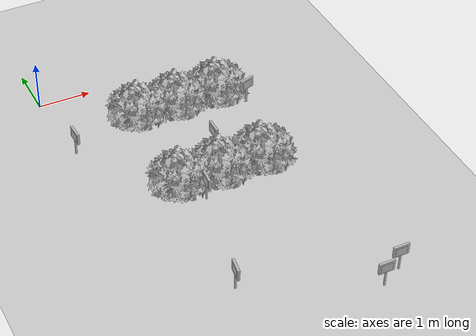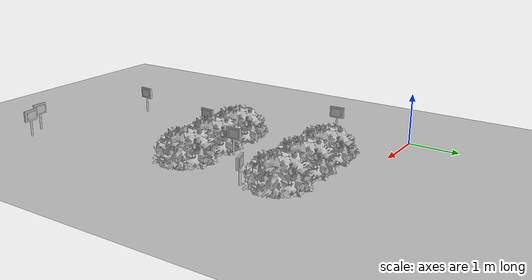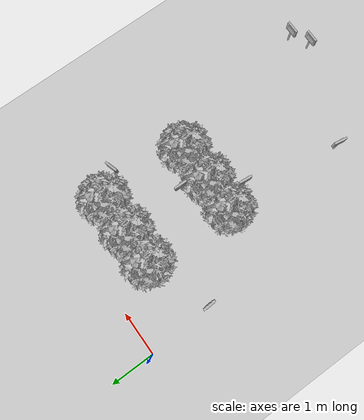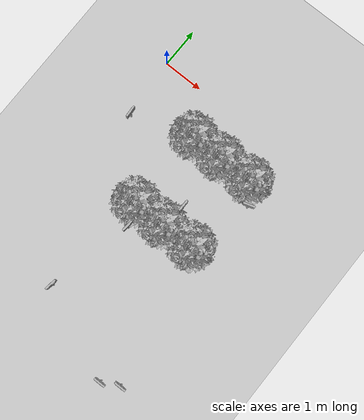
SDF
<sdf version="1.7">
 <world name="default">
  <model name="ground_plane">
   <static>1</static>
   <link name="link">
    <collision name="collision">
     <geometry><plane><normal>0 0 1</normal><size>100 100</size></plane></geometry>
     <surface>
      <contact><collide_bitmask>65535</collide_bitmask></contact>
      <friction><ode><mu>100</mu><mu2>50</mu2></ode></friction>
     </surface>
    </collision>
    <visual name="visual">
     <cast_shadows>0</cast_shadows>
     <geometry><plane><normal>0 0 1</normal><size>100 100</size></plane></geometry>
     <material>
      <script><uri>file://media/materials/scripts/gazebo.material</uri><name>Gazebo/Grey</name></script>
     </material>
    </visual>
   </link>
  </model>
  <model name="abbfre_2">
   <link name="link_0">
    <inertial>
     <mass>1</mass>
     <inertia>
      <ixx>0.166667</ixx>
      <ixy>0</ixy>
      <ixz>0</ixz>
      <iyy>0.166667</iyy>
      <iyz>0</iyz>
      <izz>0.166667</izz>
     </inertia>
    </inertial>
    <pose>0 0 -0 1.60917 -0 0</pose>
    <visual name="visual">
     <geometry><mesh><uri>model://abbfre/meshes/arbufres.obj</uri><scale>1 1 1</scale></mesh></geometry>
    </visual>
    <collision name="collision">
     <geometry><mesh><uri>model://abbfre/meshes/arbufres.obj</uri><scale>1 1 1</scale></mesh></geometry>
     <surface>
      <friction>
       <ode><mu>1</mu><mu2>1</mu2><fdir1>0 0 0</fdir1><slip1>0</slip1><slip2>0</slip2></ode>
       <torsional>
        <coefficient>1</coefficient>
        <patch_radius>0</patch_radius>
        <surface_radius>0</surface_radius>
        <use_patch_radius>1</use_patch_radius>
        <ode><slip>0</slip></ode>
       </torsional>
      </friction>
      <bounce><restitution_coefficient>0</restitution_coefficient><threshold>1e+06</threshold></bounce>
      <contact>
       <collide_without_contact>0</collide_without_contact>
       <collide_without_contact_bitmask>1</collide_without_contact_bitmask>
       <collide_bitmask>1</collide_bitmask>
       <ode>
        <soft_cfm>0</soft_cfm>
        <soft_erp>0.2</soft_erp>
        <kp>1e+13</kp>
        <kd>1</kd>
        <max_vel>0.01</max_vel>
        <min_depth>0</min_depth>
       </ode>
       <bullet>
        <split_impulse>1</split_impulse>
        <split_impulse_penetration_threshold>-0.01</split_impulse_penetration_threshold>
        <soft_cfm>0</soft_cfm>
        <soft_erp>0.2</soft_erp>
        <kp>1e+13</kp>
        <kd>1</kd>
       </bullet>
      </contact>
     </surface>
    </collision>
   </link>
   <static>1</static>
   <pose>2.4303 -0.881882 0 0 -0 0</pose>
  </model>
  <model name="abbfre_8">
   <link name="link_0">
    <inertial>
     <mass>1</mass>
     <inertia>
      <ixx>0.166667</ixx>
      <ixy>0</ixy>
      <ixz>0</ixz>
      <iyy>0.166667</iyy>
      <iyz>0</iyz>
      <izz>0.166667</izz>
     </inertia>
    </inertial>
    <pose>0 0 -0 1.60917 -0 0</pose>
    <visual name="visual">
     <geometry><mesh><uri>model://abbfre/meshes/arbufres.obj</uri><scale>1 1 1</scale></mesh></geometry>
    </visual>
    <collision name="collision">
     <geometry><mesh><uri>model://abbfre/meshes/arbufres.obj</uri><scale>1 1 1</scale></mesh></geometry>
     <surface>
      <friction>
       <ode><mu>1</mu><mu2>1</mu2><fdir1>0 0 0</fdir1><slip1>0</slip1><slip2>0</slip2></ode>
       <torsional>
        <coefficient>1</coefficient>
        <patch_radius>0</patch_radius>
        <surface_radius>0</surface_radius>
        <use_patch_radius>1</use_patch_radius>
        <ode><slip>0</slip></ode>
       </torsional>
      </friction>
      <bounce><restitution_coefficient>0</restitution_coefficient><threshold>1e+06</threshold></bounce>
      <contact>
       <collide_without_contact>0</collide_without_contact>
       <collide_without_contact_bitmask>1</collide_without_contact_bitmask>
       <collide_bitmask>1</collide_bitmask>
       <ode>
        <soft_cfm>0</soft_cfm>
        <soft_erp>0.2</soft_erp>
        <kp>1e+13</kp>
        <kd>1</kd>
        <max_vel>0.01</max_vel>
        <min_depth>0</min_depth>
       </ode>
       <bullet>
        <split_impulse>1</split_impulse>
        <split_impulse_penetration_threshold>-0.01</split_impulse_penetration_threshold>
        <soft_cfm>0</soft_cfm>
        <soft_erp>0.2</soft_erp>
        <kp>1e+13</kp>
        <kd>1</kd>
       </bullet>
      </contact>
     </surface>
    </collision>
   </link>
   <static>1</static>
   <pose>2.34792 -2.93612 0 0 -0 0</pose>
  </model>
  <model name="letrero_riego_II_1">
   <link name="link_0">
    <inertial>
     <mass>0.0543151</mass>
     <inertia>
      <ixx>4.90351e-06</ixx>
      <ixy>0</ixy>
      <ixz>0</ixz>
      <iyy>4.90351e-06</iyy>
      <iyz>0</iyz>
      <izz>1.12837e-07</izz>
     </inertia>
    </inertial>
    <pose>0.002515 0.005109 0.153562 0 -0 0</pose>
    <visual name="visual">
     <geometry><cylinder><radius>0.0203836</radius><length>0.327243</length></cylinder></geometry>
     <material>
      <lighting>1</lighting>
      <script>
       <uri>model://letrero_riego_II/madera/scripts</uri>
       <uri>model://letrero_riego_II/madera/textures</uri>
       <name>textur/madera</name>
      </script>
      <shader type="pixel"/>
      <emissive>0 0 0 1</emissive>
     </material>
    </visual>
    <collision name="collision">
     <geometry><cylinder><radius>0.020384</radius><length>0.327243</length></cylinder></geometry>
     <surface>
      <friction>
       <ode><mu>1</mu><mu2>1</mu2><fdir1>0 0 0</fdir1><slip1>0</slip1><slip2>0</slip2></ode>
       <torsional>
        <coefficient>1</coefficient>
        <patch_radius>0</patch_radius>
        <surface_radius>0</surface_radius>
        <use_patch_radius>1</use_patch_radius>
        <ode><slip>0</slip></ode>
       </torsional>
      </friction>
      <bounce><restitution_coefficient>0</restitution_coefficient><threshold>1e+06</threshold></bounce>
      <contact>
       <collide_without_contact>0</collide_without_contact>
       <collide_without_contact_bitmask>1</collide_without_contact_bitmask>
       <collide_bitmask>1</collide_bitmask>
       <ode>
        <soft_cfm>0</soft_cfm>
        <soft_erp>0.2</soft_erp>
        <kp>1e+13</kp>
        <kd>1</kd>
        <max_vel>0.01</max_vel>
        <min_depth>0</min_depth>
       </ode>
       <bullet>
        <split_impulse>1</split_impulse>
        <split_impulse_penetration_threshold>-0.01</split_impulse_penetration_threshold>
        <soft_cfm>0</soft_cfm>
        <soft_erp>0.2</soft_erp>
        <kp>1e+13</kp>
        <kd>1</kd>
       </bullet>
      </contact>
     </surface>
    </collision>
   </link>
   <link name="link_1">
    <inertial>
     <mass>0.00299633</mass>
     <inertia>
      <ixx>1.27855e-05</ixx>
      <ixy>0</ixy>
      <ixz>0</ixz>
      <iyy>3.42923e-05</iyy>
      <iyz>0</iyz>
      <izz>2.25402e-05</izz>
     </inertia>
    </inertial>
    <pose>-0.001542 0.002452 0.422031 0 -0 0</pose>
    <visual name="visual">
     <geometry><box><size>0.296988 0.04549 0.221665</size></box></geometry>
     <material>
      <lighting>1</lighting>
      <script>
       <uri>model://letrero_riego_II/madera/scripts</uri>
       <uri>model://letrero_riego_II/madera/textures</uri>
       <name>textur/madera</name>
      </script>
      <shader type="pixel"/>
      <emissive>0 0 0 1</emissive>
     </material>
    </visual>
    <collision name="collision">
     <geometry><box><size>0.296988 0.04549 0.221665</size></box></geometry>
     <surface>
      <friction>
       <ode><mu>1</mu><mu2>1</mu2><fdir1>0 0 0</fdir1><slip1>0</slip1><slip2>0</slip2></ode>
       <torsional>
        <coefficient>1</coefficient>
        <patch_radius>0</patch_radius>
        <surface_radius>0</surface_radius>
        <use_patch_radius>1</use_patch_radius>
        <ode><slip>0</slip></ode>
       </torsional>
      </friction>
      <bounce><restitution_coefficient>0</restitution_coefficient><threshold>1e+06</threshold></bounce>
      <contact>
       <collide_without_contact>0</collide_without_contact>
       <collide_without_contact_bitmask>1</collide_without_contact_bitmask>
       <collide_bitmask>1</collide_bitmask>
       <ode>
        <soft_cfm>0</soft_cfm>
        <soft_erp>0.2</soft_erp>
        <kp>1e+13</kp>
        <kd>1</kd>
        <max_vel>0.01</max_vel>
        <min_depth>0</min_depth>
       </ode>
       <bullet>
        <split_impulse>1</split_impulse>
        <split_impulse_penetration_threshold>-0.01</split_impulse_penetration_threshold>
        <soft_cfm>0</soft_cfm>
        <soft_erp>0.2</soft_erp>
        <kp>1e+13</kp>
        <kd>1</kd>
       </bullet>
      </contact>
     </surface>
    </collision>
   </link>
   <link name="link_2">
    <inertial>
     <mass>0.00173577</mass>
     <inertia>
      <ixx>4.23206e-06</ixx>
      <ixy>0</ixy>
      <ixz>0</ixz>
      <iyy>1.03921e-05</iyy>
      <iyz>0</iyz>
      <izz>7.37287e-06</izz>
     </inertia>
    </inertial>
    <pose>-0.010225 0.002657 0.421501 0 -0 0</pose>
    <visual name="visual">
     <geometry><box><size>0.216284 0.064749 0.15832</size></box></geometry>
     <material>
      <lighting>1</lighting>
      <script>
       <uri>model://letrero_riego_II/materials/scripts</uri>
       <uri>model://letrero_riego_II/materials/textures</uri>
       <name>textur/sisrie</name>
      </script>
      <shader type="pixel"/>
      <emissive>0 0 0 1</emissive>
     </material>
    </visual>
    <collision name="collision">
     <geometry><box><size>0.216284 0.064749 0.15832</size></box></geometry>
     <surface>
      <friction>
       <ode><mu>1</mu><mu2>1</mu2><fdir1>0 0 0</fdir1><slip1>0</slip1><slip2>0</slip2></ode>
       <torsional>
        <coefficient>1</coefficient>
        <patch_radius>0</patch_radius>
        <surface_radius>0</surface_radius>
        <use_patch_radius>1</use_patch_radius>
        <ode><slip>0</slip></ode>
       </torsional>
      </friction>
      <bounce><restitution_coefficient>0</restitution_coefficient><threshold>1e+06</threshold></bounce>
      <contact>
       <collide_without_contact>0</collide_without_contact>
       <collide_without_contact_bitmask>1</collide_without_contact_bitmask>
       <collide_bitmask>1</collide_bitmask>
       <ode>
        <soft_cfm>0</soft_cfm>
        <soft_erp>0.2</soft_erp>
        <kp>1e+13</kp>
        <kd>1</kd>
        <max_vel>0.01</max_vel>
        <min_depth>0</min_depth>
       </ode>
       <bullet>
        <split_impulse>1</split_impulse>
        <split_impulse_penetration_threshold>-0.01</split_impulse_penetration_threshold>
        <soft_cfm>0</soft_cfm>
        <soft_erp>0.2</soft_erp>
        <kp>1e+13</kp>
        <kd>1</kd>
       </bullet>
      </contact>
     </surface>
    </collision>
   </link>
   <joint name="link_0_JOINT_1" type="fixed">
    <parent>link_0</parent>
    <child>link_1</child>
    <physics>
     <ode><limit><cfm>0</cfm><erp>0.2</erp></limit><suspension><cfm>0</cfm><erp>0.2</erp></suspension></ode>
    </physics>
   </joint>
   <joint name="link_0_JOINT_2" type="fixed">
    <parent>link_0</parent>
    <child>link_2</child>
    <physics>
     <ode><limit><cfm>0</cfm><erp>0.2</erp></limit><suspension><cfm>0</cfm><erp>0.2</erp></suspension></ode>
    </physics>
   </joint>
   <static>1</static>
   <pose>3.62165 -1.52882 0 0 -0 0.298918</pose>
  </model>
  <model name="letrero_fresas_II_0">
   <link name="link_0">
    <inertial>
     <mass>0.0543151</mass>
     <inertia>
      <ixx>4.90351e-06</ixx>
      <ixy>0</ixy>
      <ixz>0</ixz>
      <iyy>4.90351e-06</iyy>
      <iyz>0</iyz>
      <izz>1.12837e-07</izz>
     </inertia>
    </inertial>
    <pose>0.002515 0.005109 0.153562 0 -0 0</pose>
    <visual name="visual">
     <geometry><cylinder><radius>0.0203836</radius><length>0.327243</length></cylinder></geometry>
     <material>
      <lighting>1</lighting>
      <script>
       <uri>model://letrero_fresas_II/madera/scripts</uri>
       <uri>model://letrero_fresas_II/madera/textures</uri>
       <name>textur/madera</name>
      </script>
      <shader type="pixel"/>
      <emissive>0 0 0 1</emissive>
     </material>
    </visual>
    <collision name="collision">
     <geometry><cylinder><radius>0.020384</radius><length>0.327243</length></cylinder></geometry>
     <surface>
      <friction>
       <ode><mu>1</mu><mu2>1</mu2><fdir1>0 0 0</fdir1><slip1>0</slip1><slip2>0</slip2></ode>
       <torsional>
        <coefficient>1</coefficient>
        <patch_radius>0</patch_radius>
        <surface_radius>0</surface_radius>
        <use_patch_radius>1</use_patch_radius>
        <ode><slip>0</slip></ode>
       </torsional>
      </friction>
      <bounce><restitution_coefficient>0</restitution_coefficient><threshold>1e+06</threshold></bounce>
      <contact>
       <collide_without_contact>0</collide_without_contact>
       <collide_without_contact_bitmask>1</collide_without_contact_bitmask>
       <collide_bitmask>1</collide_bitmask>
       <ode>
        <soft_cfm>0</soft_cfm>
        <soft_erp>0.2</soft_erp>
        <kp>1e+13</kp>
        <kd>1</kd>
        <max_vel>0.01</max_vel>
        <min_depth>0</min_depth>
       </ode>
       <bullet>
        <split_impulse>1</split_impulse>
        <split_impulse_penetration_threshold>-0.01</split_impulse_penetration_threshold>
        <soft_cfm>0</soft_cfm>
        <soft_erp>0.2</soft_erp>
        <kp>1e+13</kp>
        <kd>1</kd>
       </bullet>
      </contact>
     </surface>
    </collision>
   </link>
   <link name="link_1">
    <inertial>
     <mass>0.00299633</mass>
     <inertia>
      <ixx>1.27855e-05</ixx>
      <ixy>0</ixy>
      <ixz>0</ixz>
      <iyy>3.42923e-05</iyy>
      <iyz>0</iyz>
      <izz>2.25402e-05</izz>
     </inertia>
    </inertial>
    <pose>-0.001542 0.002452 0.422031 0 -0 0</pose>
    <visual name="visual">
     <geometry><box><size>0.296988 0.04549 0.221665</size></box></geometry>
     <material>
      <lighting>1</lighting>
      <script>
       <uri>model://letrero_fresas_II/madera/scripts</uri>
       <uri>model://letrero_fresas_II/madera/textures</uri>
       <name>textur/madera</name>
      </script>
      <shader type="pixel"/>
      <emissive>0 0 0 1</emissive>
     </material>
    </visual>
    <collision name="collision">
     <geometry><box><size>0.296988 0.04549 0.221665</size></box></geometry>
     <surface>
      <friction>
       <ode><mu>1</mu><mu2>1</mu2><fdir1>0 0 0</fdir1><slip1>0</slip1><slip2>0</slip2></ode>
       <torsional>
        <coefficient>1</coefficient>
        <patch_radius>0</patch_radius>
        <surface_radius>0</surface_radius>
        <use_patch_radius>1</use_patch_radius>
        <ode><slip>0</slip></ode>
       </torsional>
      </friction>
      <bounce><restitution_coefficient>0</restitution_coefficient><threshold>1e+06</threshold></bounce>
      <contact>
       <collide_without_contact>0</collide_without_contact>
       <collide_without_contact_bitmask>1</collide_without_contact_bitmask>
       <collide_bitmask>1</collide_bitmask>
       <ode>
        <soft_cfm>0</soft_cfm>
        <soft_erp>0.2</soft_erp>
        <kp>1e+13</kp>
        <kd>1</kd>
        <max_vel>0.01</max_vel>
        <min_depth>0</min_depth>
       </ode>
       <bullet>
        <split_impulse>1</split_impulse>
        <split_impulse_penetration_threshold>-0.01</split_impulse_penetration_threshold>
        <soft_cfm>0</soft_cfm>
        <soft_erp>0.2</soft_erp>
        <kp>1e+13</kp>
        <kd>1</kd>
       </bullet>
      </contact>
     </surface>
    </collision>
   </link>
   <link name="link_2">
    <inertial>
     <mass>0.00173577</mass>
     <inertia>
      <ixx>4.23206e-06</ixx>
      <ixy>0</ixy>
      <ixz>0</ixz>
      <iyy>1.03921e-05</iyy>
      <iyz>0</iyz>
      <izz>7.37287e-06</izz>
     </inertia>
    </inertial>
    <pose>-0.010225 0.002657 0.421501 0 -0 0</pose>
    <visual name="visual">
     <geometry><box><size>0.216284 0.064749 0.15832</size></box></geometry>
     <material>
      <lighting>1</lighting>
      <script>
       <uri>model://letrero_fresas_II/materials/scripts</uri>
       <uri>model://letrero_fresas_II/materials/textures</uri>
       <name>textur/difres</name>
      </script>
      <shader type="pixel"/>
      <emissive>0 0 0 1</emissive>
     </material>
    </visual>
    <collision name="collision">
     <geometry><box><size>0.216284 0.064749 0.15832</size></box></geometry>
     <surface>
      <friction>
       <ode><mu>1</mu><mu2>1</mu2><fdir1>0 0 0</fdir1><slip1>0</slip1><slip2>0</slip2></ode>
       <torsional>
        <coefficient>1</coefficient>
        <patch_radius>0</patch_radius>
        <surface_radius>0</surface_radius>
        <use_patch_radius>1</use_patch_radius>
        <ode><slip>0</slip></ode>
       </torsional>
      </friction>
      <bounce><restitution_coefficient>0</restitution_coefficient><threshold>1e+06</threshold></bounce>
      <contact>
       <collide_without_contact>0</collide_without_contact>
       <collide_without_contact_bitmask>1</collide_without_contact_bitmask>
       <collide_bitmask>1</collide_bitmask>
       <ode>
        <soft_cfm>0</soft_cfm>
        <soft_erp>0.2</soft_erp>
        <kp>1e+13</kp>
        <kd>1</kd>
        <max_vel>0.01</max_vel>
        <min_depth>0</min_depth>
       </ode>
       <bullet>
        <split_impulse>1</split_impulse>
        <split_impulse_penetration_threshold>-0.01</split_impulse_penetration_threshold>
        <soft_cfm>0</soft_cfm>
        <soft_erp>0.2</soft_erp>
        <kp>1e+13</kp>
        <kd>1</kd>
       </bullet>
      </contact>
     </surface>
    </collision>
   </link>
   <joint name="link_0_JOINT_1" type="fixed">
    <parent>link_0</parent>
    <child>link_1</child>
    <physics>
     <ode><limit><cfm>0</cfm><erp>0.2</erp></limit><suspension><cfm>0</cfm><erp>0.2</erp></suspension></ode>
    </physics>
   </joint>
   <joint name="link_0_JOINT_2" type="fixed">
    <parent>link_0</parent>
    <child>link_2</child>
    <physics>
     <ode><limit><cfm>0</cfm><erp>0.2</erp></limit><suspension><cfm>0</cfm><erp>0.2</erp></suspension></ode>
    </physics>
   </joint>
   <static>1</static>
   <pose>2.45807 -2.47304 0 0 0 -1.58641</pose>
  </model>
  <model name="letrero_pajaro">
   <link name="link_0">
    <inertial>
     <mass>0.0543151</mass>
     <inertia>
      <ixx>4.90351e-06</ixx>
      <ixy>0</ixy>
      <ixz>0</ixz>
      <iyy>4.90351e-06</iyy>
      <iyz>0</iyz>
      <izz>1.12837e-07</izz>
     </inertia>
    </inertial>
    <pose>0.002515 0.005109 0.153562 0 -0 0</pose>
    <visual name="visual">
     <geometry><cylinder><radius>0.0203836</radius><length>0.327243</length></cylinder></geometry>
     <material>
      <lighting>1</lighting>
      <script>
       <uri>model://letrero_pajaro/madera/scripts</uri>
       <uri>model://letrero_pajaro/madera/textures</uri>
       <name>textur/madera</name>
      </script>
      <shader type="pixel"/>
      <emissive>0 0 0 1</emissive>
     </material>
    </visual>
    <collision name="collision">
     <geometry><cylinder><radius>0.020384</radius><length>0.327243</length></cylinder></geometry>
     <surface>
      <friction>
       <ode><mu>1</mu><mu2>1</mu2><fdir1>0 0 0</fdir1><slip1>0</slip1><slip2>0</slip2></ode>
       <torsional>
        <coefficient>1</coefficient>
        <patch_radius>0</patch_radius>
        <surface_radius>0</surface_radius>
        <use_patch_radius>1</use_patch_radius>
        <ode><slip>0</slip></ode>
       </torsional>
      </friction>
      <bounce><restitution_coefficient>0</restitution_coefficient><threshold>1e+06</threshold></bounce>
      <contact>
       <collide_without_contact>0</collide_without_contact>
       <collide_without_contact_bitmask>1</collide_without_contact_bitmask>
       <collide_bitmask>1</collide_bitmask>
       <ode>
        <soft_cfm>0</soft_cfm>
        <soft_erp>0.2</soft_erp>
        <kp>1e+13</kp>
        <kd>1</kd>
        <max_vel>0.01</max_vel>
        <min_depth>0</min_depth>
       </ode>
       <bullet>
        <split_impulse>1</split_impulse>
        <split_impulse_penetration_threshold>-0.01</split_impulse_penetration_threshold>
        <soft_cfm>0</soft_cfm>
        <soft_erp>0.2</soft_erp>
        <kp>1e+13</kp>
        <kd>1</kd>
       </bullet>
      </contact>
     </surface>
    </collision>
   </link>
   <link name="link_1">
    <inertial>
     <mass>0.00299633</mass>
     <inertia>
      <ixx>1.27855e-05</ixx>
      <ixy>0</ixy>
      <ixz>0</ixz>
      <iyy>3.42923e-05</iyy>
      <iyz>0</iyz>
      <izz>2.25402e-05</izz>
     </inertia>
    </inertial>
    <pose>-0.001542 0.002452 0.422031 0 -0 0</pose>
    <visual name="visual">
     <geometry><box><size>0.296988 0.04549 0.221665</size></box></geometry>
     <material>
      <lighting>1</lighting>
      <script>
       <uri>model://letrero_pajaro/madera/scripts</uri>
       <uri>model://letrero_pajaro/madera/textures</uri>
       <name>textur/madera</name>
      </script>
      <shader type="pixel"/>
      <emissive>0 0 0 1</emissive>
     </material>
    </visual>
    <collision name="collision">
     <geometry><box><size>0.296988 0.04549 0.221665</size></box></geometry>
     <surface>
      <friction>
       <ode><mu>1</mu><mu2>1</mu2><fdir1>0 0 0</fdir1><slip1>0</slip1><slip2>0</slip2></ode>
       <torsional>
        <coefficient>1</coefficient>
        <patch_radius>0</patch_radius>
        <surface_radius>0</surface_radius>
        <use_patch_radius>1</use_patch_radius>
        <ode><slip>0</slip></ode>
       </torsional>
      </friction>
      <bounce><restitution_coefficient>0</restitution_coefficient><threshold>1e+06</threshold></bounce>
      <contact>
       <collide_without_contact>0</collide_without_contact>
       <collide_without_contact_bitmask>1</collide_without_contact_bitmask>
       <collide_bitmask>1</collide_bitmask>
       <ode>
        <soft_cfm>0</soft_cfm>
        <soft_erp>0.2</soft_erp>
        <kp>1e+13</kp>
        <kd>1</kd>
        <max_vel>0.01</max_vel>
        <min_depth>0</min_depth>
       </ode>
       <bullet>
        <split_impulse>1</split_impulse>
        <split_impulse_penetration_threshold>-0.01</split_impulse_penetration_threshold>
        <soft_cfm>0</soft_cfm>
        <soft_erp>0.2</soft_erp>
        <kp>1e+13</kp>
        <kd>1</kd>
       </bullet>
      </contact>
     </surface>
    </collision>
   </link>
   <link name="link_2">
    <inertial>
     <mass>0.00173577</mass>
     <inertia>
      <ixx>4.23206e-06</ixx>
      <ixy>0</ixy>
      <ixz>0</ixz>
      <iyy>1.03921e-05</iyy>
      <iyz>0</iyz>
      <izz>7.37287e-06</izz>
     </inertia>
    </inertial>
    <pose>-0.010225 0.002657 0.421501 0 -0 0</pose>
    <visual name="visual">
     <geometry><box><size>0.216284 0.064749 0.15832</size></box></geometry>
     <material>
      <lighting>1</lighting>
      <script>
       <uri>model://letrero_pajaro/materials/scripts</uri>
       <uri>model://letrero_pajaro/materials/textures</uri>
       <name>textur/paj</name>
      </script>
      <shader type="pixel"/>
      <emissive>0 0 0 1</emissive>
     </material>
    </visual>
    <collision name="collision">
     <geometry><box><size>0.216284 0.064749 0.15832</size></box></geometry>
     <surface>
      <friction>
       <ode><mu>1</mu><mu2>1</mu2><fdir1>0 0 0</fdir1><slip1>0</slip1><slip2>0</slip2></ode>
       <torsional>
        <coefficient>1</coefficient>
        <patch_radius>0</patch_radius>
        <surface_radius>0</surface_radius>
        <use_patch_radius>1</use_patch_radius>
        <ode><slip>0</slip></ode>
       </torsional>
      </friction>
      <bounce><restitution_coefficient>0</restitution_coefficient><threshold>1e+06</threshold></bounce>
      <contact>
       <collide_without_contact>0</collide_without_contact>
       <collide_without_contact_bitmask>1</collide_without_contact_bitmask>
       <collide_bitmask>1</collide_bitmask>
       <ode>
        <soft_cfm>0</soft_cfm>
        <soft_erp>0.2</soft_erp>
        <kp>1e+13</kp>
        <kd>1</kd>
        <max_vel>0.01</max_vel>
        <min_depth>0</min_depth>
       </ode>
       <bullet>
        <split_impulse>1</split_impulse>
        <split_impulse_penetration_threshold>-0.01</split_impulse_penetration_threshold>
        <soft_cfm>0</soft_cfm>
        <soft_erp>0.2</soft_erp>
        <kp>1e+13</kp>
        <kd>1</kd>
       </bullet>
      </contact>
     </surface>
    </collision>
   </link>
   <joint name="link_0_JOINT_1" type="fixed">
    <parent>link_0</parent>
    <child>link_1</child>
    <physics>
     <ode><limit><cfm>0</cfm><erp>0.2</erp></limit><suspension><cfm>0</cfm><erp>0.2</erp></suspension></ode>
    </physics>
   </joint>
   <joint name="link_0_JOINT_2" type="fixed">
    <parent>link_0</parent>
    <child>link_2</child>
    <physics>
     <ode><limit><cfm>0</cfm><erp>0.2</erp></limit><suspension><cfm>0</cfm><erp>0.2</erp></suspension></ode>
    </physics>
   </joint>
   <static>1</static>
   <pose>0.149899 -1.52562 0 0 -0 1.63003</pose>
  </model>
  <model name="letrero_fresas_II_2">
   <link name="link_0">
    <inertial>
     <mass>0.0543151</mass>
     <inertia>
      <ixx>4.90351e-06</ixx>
      <ixy>0</ixy>
      <ixz>0</ixz>
      <iyy>4.90351e-06</iyy>
      <iyz>0</iyz>
      <izz>1.12837e-07</izz>
     </inertia>
    </inertial>
    <pose>0.002515 0.005109 0.153562 0 -0 0</pose>
    <visual name="visual">
     <geometry><cylinder><radius>0.0203836</radius><length>0.327243</length></cylinder></geometry>
     <material>
      <lighting>1</lighting>
      <script>
       <uri>model://letrero_fresas_II/madera/scripts</uri>
       <uri>model://letrero_fresas_II/madera/textures</uri>
       <name>textur/madera</name>
      </script>
      <shader type="pixel"/>
      <emissive>0 0 0 1</emissive>
     </material>
    </visual>
    <collision name="collision">
     <geometry><cylinder><radius>0.020384</radius><length>0.327243</length></cylinder></geometry>
     <surface>
      <friction>
       <ode><mu>1</mu><mu2>1</mu2><fdir1>0 0 0</fdir1><slip1>0</slip1><slip2>0</slip2></ode>
       <torsional>
        <coefficient>1</coefficient>
        <patch_radius>0</patch_radius>
        <surface_radius>0</surface_radius>
        <use_patch_radius>1</use_patch_radius>
        <ode><slip>0</slip></ode>
       </torsional>
      </friction>
      <bounce><restitution_coefficient>0</restitution_coefficient><threshold>1e+06</threshold></bounce>
      <contact>
       <collide_without_contact>0</collide_without_contact>
       <collide_without_contact_bitmask>1</collide_without_contact_bitmask>
       <collide_bitmask>1</collide_bitmask>
       <ode>
        <soft_cfm>0</soft_cfm>
        <soft_erp>0.2</soft_erp>
        <kp>1e+13</kp>
        <kd>1</kd>
        <max_vel>0.01</max_vel>
        <min_depth>0</min_depth>
       </ode>
       <bullet>
        <split_impulse>1</split_impulse>
        <split_impulse_penetration_threshold>-0.01</split_impulse_penetration_threshold>
        <soft_cfm>0</soft_cfm>
        <soft_erp>0.2</soft_erp>
        <kp>1e+13</kp>
        <kd>1</kd>
       </bullet>
      </contact>
     </surface>
    </collision>
   </link>
   <link name="link_1">
    <inertial>
     <mass>0.00299633</mass>
     <inertia>
      <ixx>1.27855e-05</ixx>
      <ixy>0</ixy>
      <ixz>0</ixz>
      <iyy>3.42923e-05</iyy>
      <iyz>0</iyz>
      <izz>2.25402e-05</izz>
     </inertia>
    </inertial>
    <pose>-0.001542 0.002452 0.422031 0 -0 0</pose>
    <visual name="visual">
     <geometry><box><size>0.296988 0.04549 0.221665</size></box></geometry>
     <material>
      <lighting>1</lighting>
      <script>
       <uri>model://letrero_fresas_II/madera/scripts</uri>
       <uri>model://letrero_fresas_II/madera/textures</uri>
       <name>textur/madera</name>
      </script>
      <shader type="pixel"/>
      <emissive>0 0 0 1</emissive>
     </material>
    </visual>
    <collision name="collision">
     <geometry><box><size>0.296988 0.04549 0.221665</size></box></geometry>
     <surface>
      <friction>
       <ode><mu>1</mu><mu2>1</mu2><fdir1>0 0 0</fdir1><slip1>0</slip1><slip2>0</slip2></ode>
       <torsional>
        <coefficient>1</coefficient>
        <patch_radius>0</patch_radius>
        <surface_radius>0</surface_radius>
        <use_patch_radius>1</use_patch_radius>
        <ode><slip>0</slip></ode>
       </torsional>
      </friction>
      <bounce><restitution_coefficient>0</restitution_coefficient><threshold>1e+06</threshold></bounce>
      <contact>
       <collide_without_contact>0</collide_without_contact>
       <collide_without_contact_bitmask>1</collide_without_contact_bitmask>
       <collide_bitmask>1</collide_bitmask>
       <ode>
        <soft_cfm>0</soft_cfm>
        <soft_erp>0.2</soft_erp>
        <kp>1e+13</kp>
        <kd>1</kd>
        <max_vel>0.01</max_vel>
        <min_depth>0</min_depth>
       </ode>
       <bullet>
        <split_impulse>1</split_impulse>
        <split_impulse_penetration_threshold>-0.01</split_impulse_penetration_threshold>
        <soft_cfm>0</soft_cfm>
        <soft_erp>0.2</soft_erp>
        <kp>1e+13</kp>
        <kd>1</kd>
       </bullet>
      </contact>
     </surface>
    </collision>
   </link>
   <link name="link_2">
    <inertial>
     <mass>0.00173577</mass>
     <inertia>
      <ixx>4.23206e-06</ixx>
      <ixy>0</ixy>
      <ixz>0</ixz>
      <iyy>1.03921e-05</iyy>
      <iyz>0</iyz>
      <izz>7.37287e-06</izz>
     </inertia>
    </inertial>
    <pose>-0.010225 0.002657 0.421501 0 -0 0</pose>
    <visual name="visual">
     <geometry><box><size>0.216284 0.064749 0.15832</size></box></geometry>
     <material>
      <lighting>1</lighting>
      <script>
       <uri>model://letrero_fresas_II/materials/scripts</uri>
       <uri>model://letrero_fresas_II/materials/textures</uri>
       <name>textur/difres</name>
      </script>
      <shader type="pixel"/>
      <emissive>0 0 0 1</emissive>
     </material>
    </visual>
    <collision name="collision">
     <geometry><box><size>0.216284 0.064749 0.15832</size></box></geometry>
     <surface>
      <friction>
       <ode><mu>1</mu><mu2>1</mu2><fdir1>0 0 0</fdir1><slip1>0</slip1><slip2>0</slip2></ode>
       <torsional>
        <coefficient>1</coefficient>
        <patch_radius>0</patch_radius>
        <surface_radius>0</surface_radius>
        <use_patch_radius>1</use_patch_radius>
        <ode><slip>0</slip></ode>
       </torsional>
      </friction>
      <bounce><restitution_coefficient>0</restitution_coefficient><threshold>1e+06</threshold></bounce>
      <contact>
       <collide_without_contact>0</collide_without_contact>
       <collide_without_contact_bitmask>1</collide_without_contact_bitmask>
       <collide_bitmask>1</collide_bitmask>
       <ode>
        <soft_cfm>0</soft_cfm>
        <soft_erp>0.2</soft_erp>
        <kp>1e+13</kp>
        <kd>1</kd>
        <max_vel>0.01</max_vel>
        <min_depth>0</min_depth>
       </ode>
       <bullet>
        <split_impulse>1</split_impulse>
        <split_impulse_penetration_threshold>-0.01</split_impulse_penetration_threshold>
        <soft_cfm>0</soft_cfm>
        <soft_erp>0.2</soft_erp>
        <kp>1e+13</kp>
        <kd>1</kd>
       </bullet>
      </contact>
     </surface>
    </collision>
   </link>
   <joint name="link_0_JOINT_1" type="fixed">
    <parent>link_0</parent>
    <child>link_1</child>
    <physics>
     <ode><limit><cfm>0</cfm><erp>0.2</erp></limit><suspension><cfm>0</cfm><erp>0.2</erp></suspension></ode>
    </physics>
   </joint>
   <joint name="link_0_JOINT_2" type="fixed">
    <parent>link_0</parent>
    <child>link_2</child>
    <physics>
     <ode><limit><cfm>0</cfm><erp>0.2</erp></limit><suspension><cfm>0</cfm><erp>0.2</erp></suspension></ode>
    </physics>
   </joint>
   <static>1</static>
   <pose>1.76483 -3.62198 0 0 -0 1.47545</pose>
  </model>
  <model name="letrero_pajaro_2">
   <link name="link_0">
    <inertial>
     <mass>0.0543151</mass>
     <inertia>
      <ixx>4.90351e-06</ixx>
      <ixy>0</ixy>
      <ixz>0</ixz>
      <iyy>4.90351e-06</iyy>
      <iyz>0</iyz>
      <izz>1.12837e-07</izz>
     </inertia>
    </inertial>
    <pose>0.002515 0.005109 0.153562 0 -0 0</pose>
    <visual name="visual">
     <geometry><cylinder><radius>0.0203836</radius><length>0.327243</length></cylinder></geometry>
     <material>
      <lighting>1</lighting>
      <script>
       <uri>model://letrero_pajaro/madera/scripts</uri>
       <uri>model://letrero_pajaro/madera/textures</uri>
       <name>textur/madera</name>
      </script>
      <shader type="pixel"/>
      <emissive>0 0 0 1</emissive>
     </material>
    </visual>
    <collision name="collision">
     <geometry><cylinder><radius>0.020384</radius><length>0.327243</length></cylinder></geometry>
     <surface>
      <friction>
       <ode><mu>1</mu><mu2>1</mu2><fdir1>0 0 0</fdir1><slip1>0</slip1><slip2>0</slip2></ode>
       <torsional>
        <coefficient>1</coefficient>
        <patch_radius>0</patch_radius>
        <surface_radius>0</surface_radius>
        <use_patch_radius>1</use_patch_radius>
        <ode><slip>0</slip></ode>
       </torsional>
      </friction>
      <bounce><restitution_coefficient>0</restitution_coefficient><threshold>1e+06</threshold></bounce>
      <contact>
       <collide_without_contact>0</collide_without_contact>
       <collide_without_contact_bitmask>1</collide_without_contact_bitmask>
       <collide_bitmask>1</collide_bitmask>
       <ode>
        <soft_cfm>0</soft_cfm>
        <soft_erp>0.2</soft_erp>
        <kp>1e+13</kp>
        <kd>1</kd>
        <max_vel>0.01</max_vel>
        <min_depth>0</min_depth>
       </ode>
       <bullet>
        <split_impulse>1</split_impulse>
        <split_impulse_penetration_threshold>-0.01</split_impulse_penetration_threshold>
        <soft_cfm>0</soft_cfm>
        <soft_erp>0.2</soft_erp>
        <kp>1e+13</kp>
        <kd>1</kd>
       </bullet>
      </contact>
     </surface>
    </collision>
   </link>
   <link name="link_1">
    <inertial>
     <mass>0.00299633</mass>
     <inertia>
      <ixx>1.27855e-05</ixx>
      <ixy>0</ixy>
      <ixz>0</ixz>
      <iyy>3.42923e-05</iyy>
      <iyz>0</iyz>
      <izz>2.25402e-05</izz>
     </inertia>
    </inertial>
    <pose>-0.001542 0.002452 0.422031 0 -0 0</pose>
    <visual name="visual">
     <geometry><box><size>0.296988 0.04549 0.221665</size></box></geometry>
     <material>
      <lighting>1</lighting>
      <script>
       <uri>model://letrero_pajaro/madera/scripts</uri>
       <uri>model://letrero_pajaro/madera/textures</uri>
       <name>textur/madera</name>
      </script>
      <shader type="pixel"/>
      <emissive>0 0 0 1</emissive>
     </material>
    </visual>
    <collision name="collision">
     <geometry><box><size>0.296988 0.04549 0.221665</size></box></geometry>
     <surface>
      <friction>
       <ode><mu>1</mu><mu2>1</mu2><fdir1>0 0 0</fdir1><slip1>0</slip1><slip2>0</slip2></ode>
       <torsional>
        <coefficient>1</coefficient>
        <patch_radius>0</patch_radius>
        <surface_radius>0</surface_radius>
        <use_patch_radius>1</use_patch_radius>
        <ode><slip>0</slip></ode>
       </torsional>
      </friction>
      <bounce><restitution_coefficient>0</restitution_coefficient><threshold>1e+06</threshold></bounce>
      <contact>
       <collide_without_contact>0</collide_without_contact>
       <collide_without_contact_bitmask>1</collide_without_contact_bitmask>
       <collide_bitmask>1</collide_bitmask>
       <ode>
        <soft_cfm>0</soft_cfm>
        <soft_erp>0.2</soft_erp>
        <kp>1e+13</kp>
        <kd>1</kd>
        <max_vel>0.01</max_vel>
        <min_depth>0</min_depth>
       </ode>
       <bullet>
        <split_impulse>1</split_impulse>
        <split_impulse_penetration_threshold>-0.01</split_impulse_penetration_threshold>
        <soft_cfm>0</soft_cfm>
        <soft_erp>0.2</soft_erp>
        <kp>1e+13</kp>
        <kd>1</kd>
       </bullet>
      </contact>
     </surface>
    </collision>
   </link>
   <link name="link_2">
    <inertial>
     <mass>0.00173577</mass>
     <inertia>
      <ixx>4.23206e-06</ixx>
      <ixy>0</ixy>
      <ixz>0</ixz>
      <iyy>1.03921e-05</iyy>
      <iyz>0</iyz>
      <izz>7.37287e-06</izz>
     </inertia>
    </inertial>
    <pose>-0.010225 0.002657 0.421501 0 -0 0</pose>
    <visual name="visual">
     <geometry><box><size>0.216284 0.064749 0.15832</size></box></geometry>
     <material>
      <lighting>1</lighting>
      <script>
       <uri>model://letrero_pajaro/materials/scripts</uri>
       <uri>model://letrero_pajaro/materials/textures</uri>
       <name>textur/paj</name>
      </script>
      <shader type="pixel"/>
      <emissive>0 0 0 1</emissive>
     </material>
    </visual>
    <collision name="collision">
     <geometry><box><size>0.216284 0.064749 0.15832</size></box></geometry>
     <surface>
      <friction>
       <ode><mu>1</mu><mu2>1</mu2><fdir1>0 0 0</fdir1><slip1>0</slip1><slip2>0</slip2></ode>
       <torsional>
        <coefficient>1</coefficient>
        <patch_radius>0</patch_radius>
        <surface_radius>0</surface_radius>
        <use_patch_radius>1</use_patch_radius>
        <ode><slip>0</slip></ode>
       </torsional>
      </friction>
      <bounce><restitution_coefficient>0</restitution_coefficient><threshold>1e+06</threshold></bounce>
      <contact>
       <collide_without_contact>0</collide_without_contact>
       <collide_without_contact_bitmask>1</collide_without_contact_bitmask>
       <collide_bitmask>1</collide_bitmask>
       <ode>
        <soft_cfm>0</soft_cfm>
        <soft_erp>0.2</soft_erp>
        <kp>1e+13</kp>
        <kd>1</kd>
        <max_vel>0.01</max_vel>
        <min_depth>0</min_depth>
       </ode>
       <bullet>
        <split_impulse>1</split_impulse>
        <split_impulse_penetration_threshold>-0.01</split_impulse_penetration_threshold>
        <soft_cfm>0</soft_cfm>
        <soft_erp>0.2</soft_erp>
        <kp>1e+13</kp>
        <kd>1</kd>
       </bullet>
      </contact>
     </surface>
    </collision>
   </link>
   <joint name="link_0_JOINT_1" type="fixed">
    <parent>link_0</parent>
    <child>link_1</child>
    <physics>
     <ode><limit><cfm>0</cfm><erp>0.2</erp></limit><suspension><cfm>0</cfm><erp>0.2</erp></suspension></ode>
    </physics>
   </joint>
   <joint name="link_0_JOINT_2" type="fixed">
    <parent>link_0</parent>
    <child>link_2</child>
    <physics>
     <ode><limit><cfm>0</cfm><erp>0.2</erp></limit><suspension><cfm>0</cfm><erp>0.2</erp></suspension></ode>
    </physics>
   </joint>
   <static>1</static>
   <pose>3.88289 -6.49159 0 0 -0 0</pose>
  </model>
  <model name="letrero_chocho_4">
   <link name="link_0">
    <inertial>
     <mass>0.0543151</mass>
     <inertia>
      <ixx>4.90351e-06</ixx>
      <ixy>0</ixy>
      <ixz>0</ixz>
      <iyy>4.90351e-06</iyy>
      <iyz>0</iyz>
      <izz>1.12837e-07</izz>
     </inertia>
    </inertial>
    <pose>0.002515 0.005109 0.153562 0 -0 0</pose>
    <visual name="visual">
     <geometry><cylinder><radius>0.0203836</radius><length>0.327243</length></cylinder></geometry>
     <material>
      <lighting>1</lighting>
      <script>
       <uri>model://letrero_chocho/madera/scripts</uri>
       <uri>model://letrero_chocho/madera/textures</uri>
       <name>textur/madera</name>
      </script>
      <shader type="pixel"/>
      <emissive>0 0 0 1</emissive>
     </material>
    </visual>
    <collision name="collision">
     <geometry><cylinder><radius>0.020384</radius><length>0.327243</length></cylinder></geometry>
     <surface>
      <friction>
       <ode><mu>1</mu><mu2>1</mu2><fdir1>0 0 0</fdir1><slip1>0</slip1><slip2>0</slip2></ode>
       <torsional>
        <coefficient>1</coefficient>
        <patch_radius>0</patch_radius>
        <surface_radius>0</surface_radius>
        <use_patch_radius>1</use_patch_radius>
        <ode><slip>0</slip></ode>
       </torsional>
      </friction>
      <bounce><restitution_coefficient>0</restitution_coefficient><threshold>1e+06</threshold></bounce>
      <contact>
       <collide_without_contact>0</collide_without_contact>
       <collide_without_contact_bitmask>1</collide_without_contact_bitmask>
       <collide_bitmask>1</collide_bitmask>
       <ode>
        <soft_cfm>0</soft_cfm>
        <soft_erp>0.2</soft_erp>
        <kp>1e+13</kp>
        <kd>1</kd>
        <max_vel>0.01</max_vel>
        <min_depth>0</min_depth>
       </ode>
       <bullet>
        <split_impulse>1</split_impulse>
        <split_impulse_penetration_threshold>-0.01</split_impulse_penetration_threshold>
        <soft_cfm>0</soft_cfm>
        <soft_erp>0.2</soft_erp>
        <kp>1e+13</kp>
        <kd>1</kd>
       </bullet>
      </contact>
     </surface>
    </collision>
   </link>
   <link name="link_1">
    <inertial>
     <mass>0.00299633</mass>
     <inertia>
      <ixx>1.27855e-05</ixx>
      <ixy>0</ixy>
      <ixz>0</ixz>
      <iyy>3.42923e-05</iyy>
      <iyz>0</iyz>
      <izz>2.25402e-05</izz>
     </inertia>
    </inertial>
    <pose>-0.001542 0.002452 0.422031 0 -0 0</pose>
    <visual name="visual">
     <geometry><box><size>0.296988 0.04549 0.221665</size></box></geometry>
     <material>
      <lighting>1</lighting>
      <script>
       <uri>model://letrero_chocho/madera/scripts</uri>
       <uri>model://letrero_chocho/madera/textures</uri>
       <name>textur/madera</name>
      </script>
      <shader type="pixel"/>
      <emissive>0 0 0 1</emissive>
     </material>
    </visual>
    <collision name="collision">
     <geometry><box><size>0.296988 0.04549 0.221665</size></box></geometry>
     <surface>
      <friction>
       <ode><mu>1</mu><mu2>1</mu2><fdir1>0 0 0</fdir1><slip1>0</slip1><slip2>0</slip2></ode>
       <torsional>
        <coefficient>1</coefficient>
        <patch_radius>0</patch_radius>
        <surface_radius>0</surface_radius>
        <use_patch_radius>1</use_patch_radius>
        <ode><slip>0</slip></ode>
       </torsional>
      </friction>
      <bounce><restitution_coefficient>0</restitution_coefficient><threshold>1e+06</threshold></bounce>
      <contact>
       <collide_without_contact>0</collide_without_contact>
       <collide_without_contact_bitmask>1</collide_without_contact_bitmask>
       <collide_bitmask>1</collide_bitmask>
       <ode>
        <soft_cfm>0</soft_cfm>
        <soft_erp>0.2</soft_erp>
        <kp>1e+13</kp>
        <kd>1</kd>
        <max_vel>0.01</max_vel>
        <min_depth>0</min_depth>
       </ode>
       <bullet>
        <split_impulse>1</split_impulse>
        <split_impulse_penetration_threshold>-0.01</split_impulse_penetration_threshold>
        <soft_cfm>0</soft_cfm>
        <soft_erp>0.2</soft_erp>
        <kp>1e+13</kp>
        <kd>1</kd>
       </bullet>
      </contact>
     </surface>
    </collision>
   </link>
   <link name="link_2">
    <inertial>
     <mass>0.00173577</mass>
     <inertia>
      <ixx>4.23206e-06</ixx>
      <ixy>0</ixy>
      <ixz>0</ixz>
      <iyy>1.03921e-05</iyy>
      <iyz>0</iyz>
      <izz>7.37287e-06</izz>
     </inertia>
    </inertial>
    <pose>-0.010225 0.002657 0.421501 0 -0 0</pose>
    <visual name="visual">
     <geometry><box><size>0.216284 0.064749 0.15832</size></box></geometry>
     <material>
      <lighting>1</lighting>
      <script>
       <uri>model://letrero_chocho/materials/scripts</uri>
       <uri>model://letrero_chocho/materials/textures</uri>
       <name>textur/cho</name>
      </script>
      <shader type="pixel"/>
      <emissive>0 0 0 1</emissive>
     </material>
    </visual>
    <collision name="collision">
     <geometry><box><size>0.216284 0.064749 0.15832</size></box></geometry>
     <surface>
      <friction>
       <ode><mu>1</mu><mu2>1</mu2><fdir1>0 0 0</fdir1><slip1>0</slip1><slip2>0</slip2></ode>
       <torsional>
        <coefficient>1</coefficient>
        <patch_radius>0</patch_radius>
        <surface_radius>0</surface_radius>
        <use_patch_radius>1</use_patch_radius>
        <ode><slip>0</slip></ode>
       </torsional>
      </friction>
      <bounce><restitution_coefficient>0</restitution_coefficient><threshold>1e+06</threshold></bounce>
      <contact>
       <collide_without_contact>0</collide_without_contact>
       <collide_without_contact_bitmask>1</collide_without_contact_bitmask>
       <collide_bitmask>1</collide_bitmask>
       <ode>
        <soft_cfm>0</soft_cfm>
        <soft_erp>0.2</soft_erp>
        <kp>1e+13</kp>
        <kd>1</kd>
        <max_vel>0.01</max_vel>
        <min_depth>0</min_depth>
       </ode>
       <bullet>
        <split_impulse>1</split_impulse>
        <split_impulse_penetration_threshold>-0.01</split_impulse_penetration_threshold>
        <soft_cfm>0</soft_cfm>
        <soft_erp>0.2</soft_erp>
        <kp>1e+13</kp>
        <kd>1</kd>
       </bullet>
      </contact>
     </surface>
    </collision>
   </link>
   <joint name="link_0_JOINT_1" type="fixed">
    <parent>link_0</parent>
    <child>link_1</child>
    <physics>
     <ode><limit><cfm>0</cfm><erp>0.2</erp></limit><suspension><cfm>0</cfm><erp>0.2</erp></suspension></ode>
    </physics>
   </joint>
   <joint name="link_0_JOINT_2" type="fixed">
    <parent>link_0</parent>
    <child>link_2</child>
    <physics>
     <ode><limit><cfm>0</cfm><erp>0.2</erp></limit><suspension><cfm>0</cfm><erp>0.2</erp></suspension></ode>
    </physics>
   </joint>
   <static>1</static>
   <pose>3.47254 -6.70555 0 0 -0 0</pose>
  </model>
  <model name="letrero_insecto_4">
   <link name="link_0">
    <inertial>
     <mass>0.00543151</mass>
     <inertia>
      <ixx>4.90351e-06</ixx>
      <ixy>0</ixy>
      <ixz>0</ixz>
      <iyy>4.90351e-06</iyy>
      <iyz>0</iyz>
      <izz>1.12837e-07</izz>
     </inertia>
    </inertial>
    <pose>0.002372 -0.000902 -0.178803 0 -0 0</pose>
    <visual name="visual">
     <geometry><cylinder><radius>0.0203836</radius><length>0.327243</length></cylinder></geometry>
     <material>
      <lighting>1</lighting>
      <script>
       <uri>model://letrero_insecto/madera/scripts</uri>
       <uri>model://letrero_insecto/madera/textures</uri>
       <name>textur/madera</name>
      </script>
      <shader type="pixel"/>
      <emissive>0 0 0 1</emissive>
     </material>
    </visual>
    <collision name="collision">
     <geometry><cylinder><radius>0.020384</radius><length>0.327243</length></cylinder></geometry>
     <surface>
      <friction>
       <ode><mu>1</mu><mu2>1</mu2><fdir1>0 0 0</fdir1><slip1>0</slip1><slip2>0</slip2></ode>
       <torsional>
        <coefficient>1</coefficient>
        <patch_radius>0</patch_radius>
        <surface_radius>0</surface_radius>
        <use_patch_radius>1</use_patch_radius>
        <ode><slip>0</slip></ode>
       </torsional>
      </friction>
      <bounce><restitution_coefficient>0</restitution_coefficient><threshold>1e+06</threshold></bounce>
      <contact>
       <collide_without_contact>0</collide_without_contact>
       <collide_without_contact_bitmask>1</collide_without_contact_bitmask>
       <collide_bitmask>1</collide_bitmask>
       <ode>
        <soft_cfm>0</soft_cfm>
        <soft_erp>0.2</soft_erp>
        <kp>1e+13</kp>
        <kd>1</kd>
        <max_vel>0.01</max_vel>
        <min_depth>0</min_depth>
       </ode>
       <bullet>
        <split_impulse>1</split_impulse>
        <split_impulse_penetration_threshold>-0.01</split_impulse_penetration_threshold>
        <soft_cfm>0</soft_cfm>
        <soft_erp>0.2</soft_erp>
        <kp>1e+13</kp>
        <kd>1</kd>
       </bullet>
      </contact>
     </surface>
    </collision>
   </link>
   <link name="link_1">
    <inertial>
     <mass>0.00299633</mass>
     <inertia>
      <ixx>1.27855e-05</ixx>
      <ixy>0</ixy>
      <ixz>0</ixz>
      <iyy>3.42923e-05</iyy>
      <iyz>0</iyz>
      <izz>2.25402e-05</izz>
     </inertia>
    </inertial>
    <pose>-0.001685 -0.003559 0.089666 0 -0 0</pose>
    <visual name="visual">
     <geometry><box><size>0.296988 0.04549 0.221665</size></box></geometry>
     <material>
      <lighting>1</lighting>
      <script>
       <uri>model://letrero_insecto/madera/scripts</uri>
       <uri>model://letrero_insecto/madera/textures</uri>
       <name>textur/madera</name>
      </script>
      <shader type="pixel"/>
      <emissive>0 0 0 1</emissive>
     </material>
    </visual>
    <collision name="collision">
     <geometry><box><size>0.296988 0.04549 0.221665</size></box></geometry>
     <surface>
      <friction>
       <ode><mu>1</mu><mu2>1</mu2><fdir1>0 0 0</fdir1><slip1>0</slip1><slip2>0</slip2></ode>
       <torsional>
        <coefficient>1</coefficient>
        <patch_radius>0</patch_radius>
        <surface_radius>0</surface_radius>
        <use_patch_radius>1</use_patch_radius>
        <ode><slip>0</slip></ode>
       </torsional>
      </friction>
      <bounce><restitution_coefficient>0</restitution_coefficient><threshold>1e+06</threshold></bounce>
      <contact>
       <collide_without_contact>0</collide_without_contact>
       <collide_without_contact_bitmask>1</collide_without_contact_bitmask>
       <collide_bitmask>1</collide_bitmask>
       <ode>
        <soft_cfm>0</soft_cfm>
        <soft_erp>0.2</soft_erp>
        <kp>1e+13</kp>
        <kd>1</kd>
        <max_vel>0.01</max_vel>
        <min_depth>0</min_depth>
       </ode>
       <bullet>
        <split_impulse>1</split_impulse>
        <split_impulse_penetration_threshold>-0.01</split_impulse_penetration_threshold>
        <soft_cfm>0</soft_cfm>
        <soft_erp>0.2</soft_erp>
        <kp>1e+13</kp>
        <kd>1</kd>
       </bullet>
      </contact>
     </surface>
    </collision>
   </link>
   <link name="link_2">
    <inertial>
     <mass>0.00219695</mass>
     <inertia>
      <ixx>5.34209e-06</ixx>
      <ixy>0</ixy>
      <ixz>0</ixz>
      <iyy>1.31531e-05</iyy>
      <iyz>0</iyz>
      <izz>9.31738e-06</izz>
     </inertia>
    </inertial>
    <pose>-0.001275 -0.005928 0.089136 0 -0 0</pose>
    <visual name="visual">
     <geometry><box><size>0.216284 0.06414 0.15832</size></box></geometry>
     <material>
      <lighting>1</lighting>
      <script>
       <uri>model://letrero_insecto/materials/scripts</uri>
       <uri>model://letrero_insecto/materials/textures</uri>
       <name>textur/insec</name>
      </script>
      <shader type="pixel"/>
      <emissive>0 0 0 1</emissive>
     </material>
    </visual>
    <collision name="collision">
     <geometry><box><size>0.216284 0.06414 0.15832</size></box></geometry>
     <surface>
      <friction>
       <ode><mu>1</mu><mu2>1</mu2><fdir1>0 0 0</fdir1><slip1>0</slip1><slip2>0</slip2></ode>
       <torsional>
        <coefficient>1</coefficient>
        <patch_radius>0</patch_radius>
        <surface_radius>0</surface_radius>
        <use_patch_radius>1</use_patch_radius>
        <ode><slip>0</slip></ode>
       </torsional>
      </friction>
      <bounce><restitution_coefficient>0</restitution_coefficient><threshold>1e+06</threshold></bounce>
      <contact>
       <collide_without_contact>0</collide_without_contact>
       <collide_without_contact_bitmask>1</collide_without_contact_bitmask>
       <collide_bitmask>1</collide_bitmask>
       <ode>
        <soft_cfm>0</soft_cfm>
        <soft_erp>0.2</soft_erp>
        <kp>1e+13</kp>
        <kd>1</kd>
        <max_vel>0.01</max_vel>
        <min_depth>0</min_depth>
       </ode>
       <bullet>
        <split_impulse>1</split_impulse>
        <split_impulse_penetration_threshold>-0.01</split_impulse_penetration_threshold>
        <soft_cfm>0</soft_cfm>
        <soft_erp>0.2</soft_erp>
        <kp>1e+13</kp>
        <kd>1</kd>
       </bullet>
      </contact>
     </surface>
    </collision>
   </link>
   <joint name="link_0_JOINT_1" type="fixed">
    <parent>link_0</parent>
    <child>link_1</child>
    <physics>
     <ode><limit><cfm>0</cfm><erp>0.2</erp></limit><suspension><cfm>0</cfm><erp>0.2</erp></suspension></ode>
    </physics>
   </joint>
   <joint name="link_0_JOINT_2" type="fixed">
    <parent>link_0</parent>
    <child>link_2</child>
    <physics>
     <ode><limit><cfm>0</cfm><erp>0.2</erp></limit><suspension><cfm>0</cfm><erp>0.2</erp></suspension></ode>
    </physics>
   </joint>
   <static>1</static>
   <pose>1.25162 -5.72015 0.339861 0 -0 1.4262</pose>
  </model>
 </world>
</sdf>
